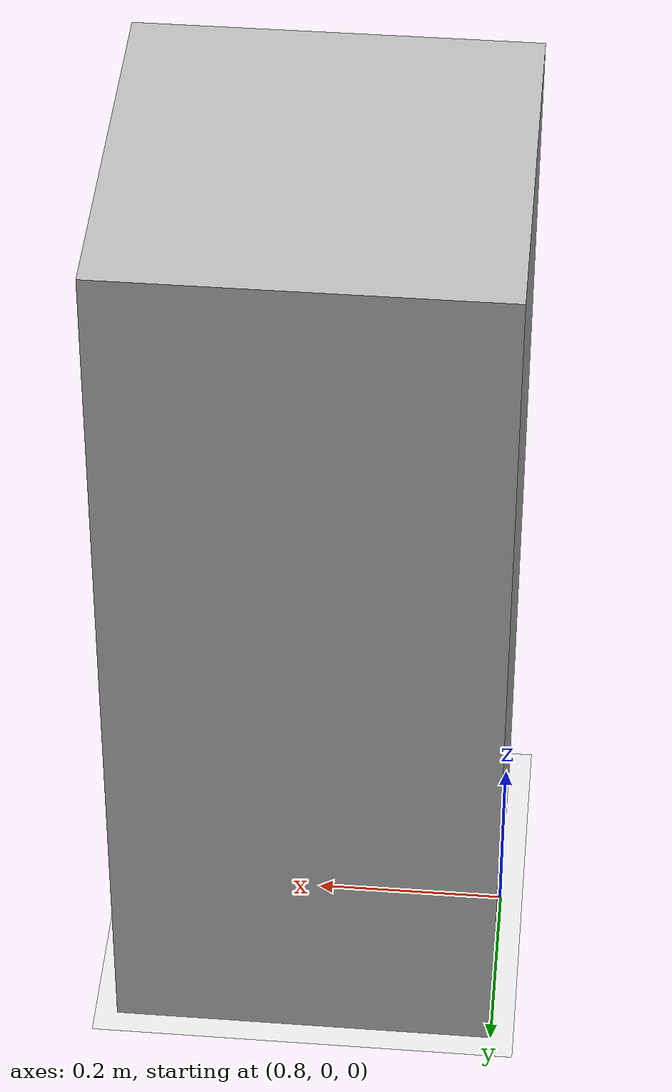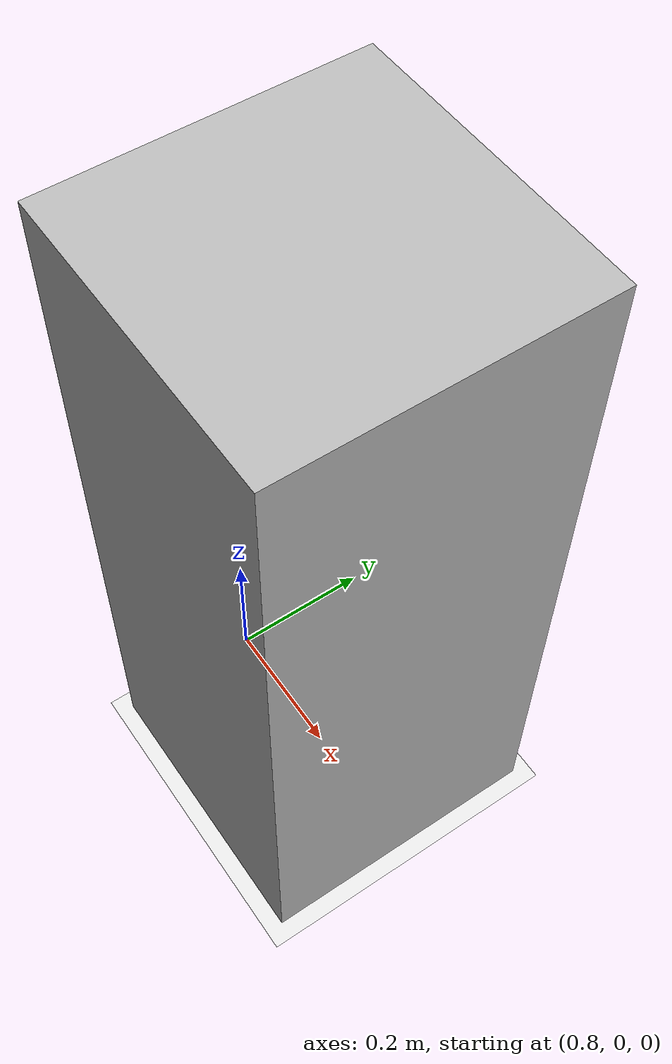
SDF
<?xml version="1.0" ?>
<sdf version="1.9">
  <world name="flexirover_world">

    <plugin filename="gz-sim-physics-system"
            name="gz::sim::systems::Physics"/>

    <plugin filename="gz-sim-user-commands-system"
            name="gz::sim::systems::UserCommands"/>

    <plugin filename="gz-sim-scene-broadcaster-system"
            name="gz::sim::systems::SceneBroadcaster"/>

    <plugin filename="gz-sim-sensors-system"
            name="gz::sim::systems::Sensors">
      <render_engine>ogre2</render_engine>
    </plugin>

    <light type="directional" name="sun">
      <pose>0 0 10 0 0 0</pose>
      <direction>-0.5 0.1 -0.9</direction>
    </light>

    <model name="ground_plane">
      <static>true</static>
      <link name="link">
        <collision name="collision">
          <geometry>
            <plane>
              <normal>0 0 1</normal>
              <size>100 100</size>
            </plane>
          </geometry>
        </collision>
        <visual name="visual">
          <geometry>
            <plane>
              <normal>0 0 1</normal>
              <size>100 100</size>
            </plane>
          </geometry>
          <material>
            <ambient>0.8 0.8 0.8 1</ambient>
            <diffuse>0.9 0.9 0.9 1</diffuse>
            <specular>0.1 0.1 0.1 1</specular>
          </material>
        </visual>
      </link>
    </model>

    <model name="test_box">
      <static>true</static>
      <pose>1.0 0 0.5 0 0 0</pose>
      <link name="link">
        <collision name="collision">
          <geometry>
            <box>
              <size>0.4 0.4 1.0</size>
            </box>
          </geometry>
        </collision>
        <visual name="visual">
          <geometry>
            <box>
              <size>0.4 0.4 1.0</size>
            </box>
          </geometry>
        </visual>
      </link>
    </model>

  </world>
</sdf>
